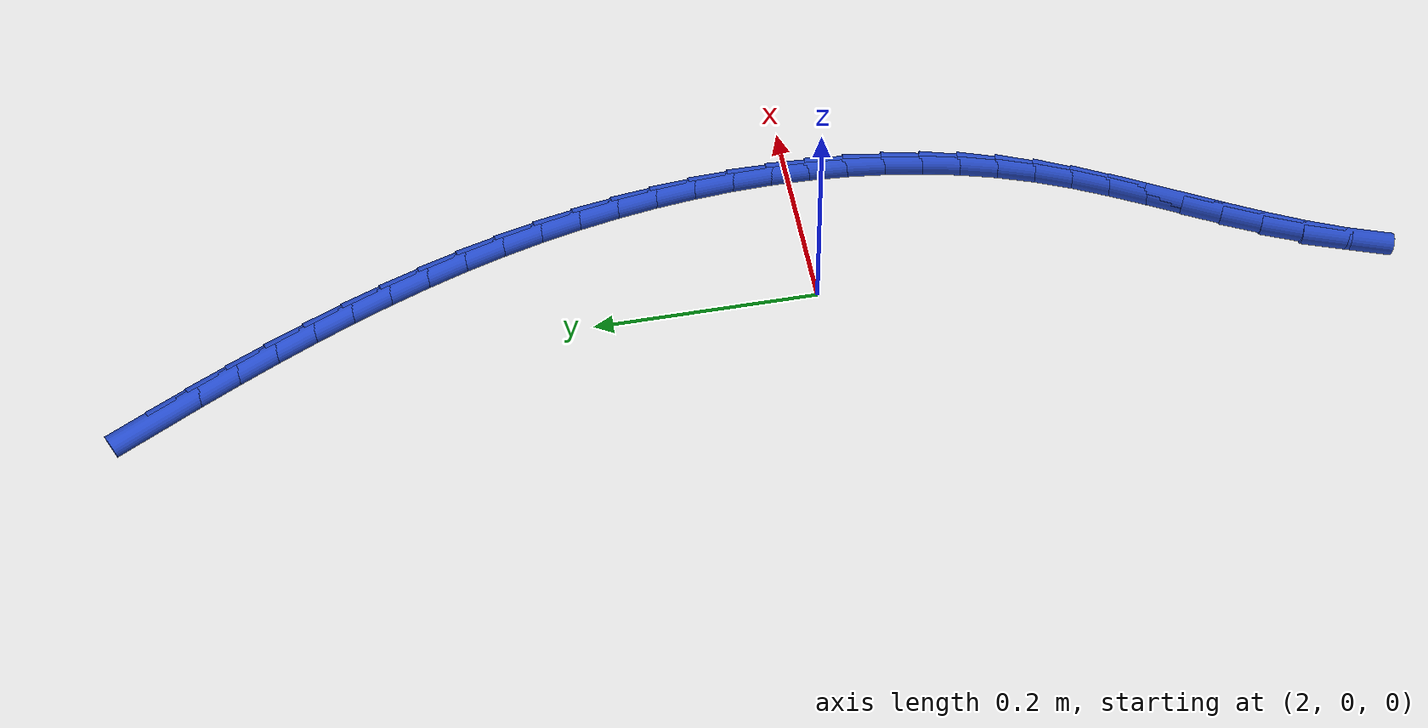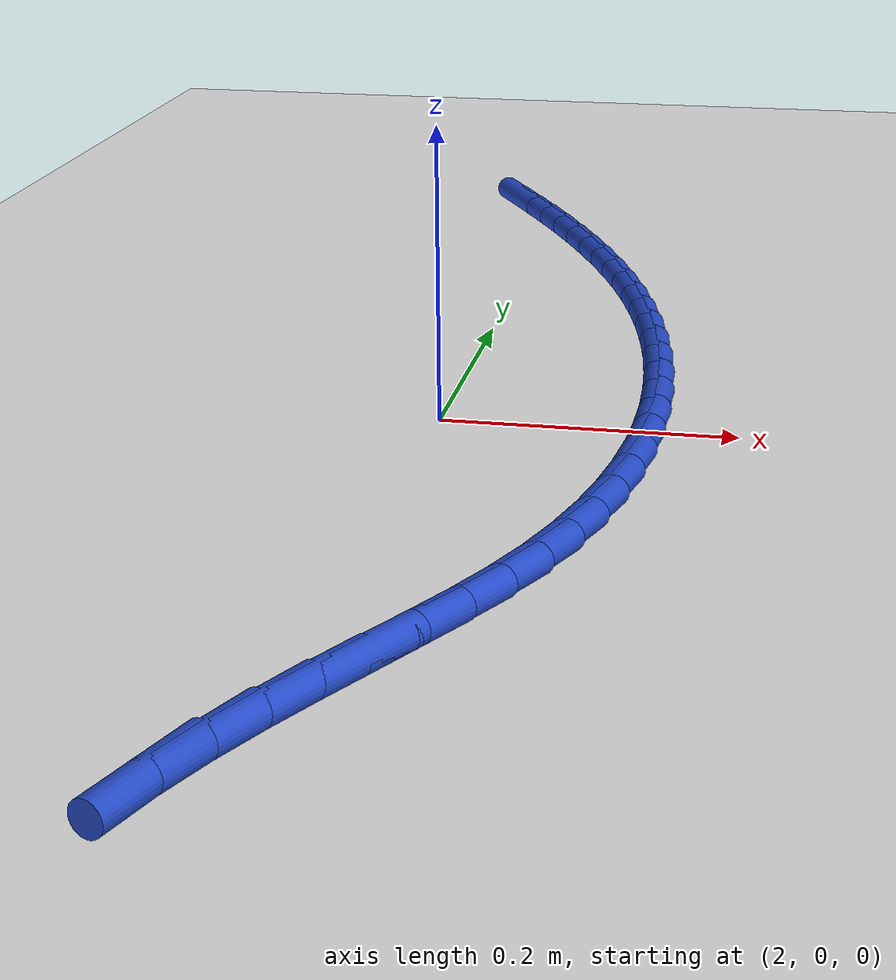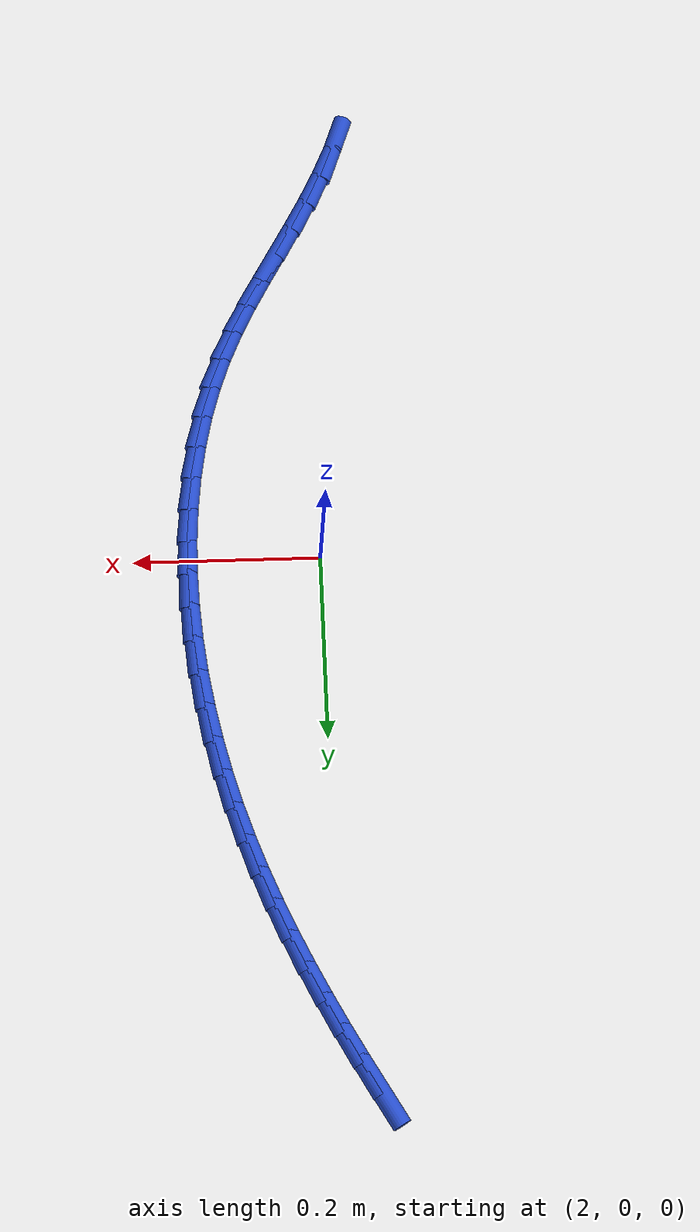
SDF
<sdf version="1.6">
 <world name="default">
  <model name="ground_plane">
   <static>1</static>
   <link name="link">
    <collision name="collision">
     <geometry><plane><normal>0 0 1</normal><size>100 100</size></plane></geometry>
     <surface><friction><ode><mu>100</mu><mu2>50</mu2></ode></friction></surface>
    </collision>
    <visual name="visual">
     <cast_shadows>0</cast_shadows>
     <geometry><plane><normal>0 0 1</normal><size>100 100</size></plane></geometry>
     <material>
      <script><uri>file://media/materials/scripts/gazebo.material</uri><name>Gazebo/WhiteGlow</name></script>
     </material>
    </visual>
   </link>
  </model>
  <model name="line">
   <link name="link_79">
    <pose>1.962989195480705 0.5665886991551644 0.01 0 1.57 -1.0466310420004505</pose>
    <collision name="collision">
     <geometry><cylinder><radius>0.01</radius><length>0.08</length></cylinder></geometry>
    </collision>
    <visual name="visual">
     <material>
      <script><name>Gazebo/Blue</name><uri>file://media/materials/scripts/gazebo.material</uri></script>
     </material>
     <geometry><cylinder><radius>0.01</radius><length>0.08</length></cylinder></geometry>
    </visual>
   </link>
   <link name="link_80">
    <pose>1.9808729263379492 0.5356536541525658 0.01 0 1.57 -1.0619980623714014</pose>
    <collision name="collision">
     <geometry><cylinder><radius>0.01</radius><length>0.08</length></cylinder></geometry>
    </collision>
    <visual name="visual">
     <material>
      <script><name>Gazebo/Blue</name><uri>file://media/materials/scripts/gazebo.material</uri></script>
     </material>
     <geometry><cylinder><radius>0.01</radius><length>0.08</length></cylinder></geometry>
    </visual>
   </link>
   <link name="link_81">
    <pose>1.9983145445873887 0.5043840594429433 0.01 0 1.57 -1.0803072613480527</pose>
    <collision name="collision">
     <geometry><cylinder><radius>0.01</radius><length>0.08</length></cylinder></geometry>
    </collision>
    <visual name="visual">
     <material>
      <script><name>Gazebo/Blue</name><uri>file://media/materials/scripts/gazebo.material</uri></script>
     </material>
     <geometry><cylinder><radius>0.01</radius><length>0.08</length></cylinder></geometry>
    </visual>
   </link>
   <link name="link_82">
    <pose>2.015212914961491 0.47274014984669144 0.01 0 1.57 -1.1015498589501629</pose>
    <collision name="collision">
     <geometry><cylinder><radius>0.01</radius><length>0.08</length></cylinder></geometry>
    </collision>
    <visual name="visual">
     <material>
      <script><name>Gazebo/Blue</name><uri>file://media/materials/scripts/gazebo.material</uri></script>
     </material>
     <geometry><cylinder><radius>0.01</radius><length>0.08</length></cylinder></geometry>
    </visual>
   </link>
   <link name="link_83">
    <pose>2.0314669021927214 0.4406821601842041 0.01 0 1.57 -1.125709327581201</pose>
    <collision name="collision">
     <geometry><cylinder><radius>0.01</radius><length>0.08</length></cylinder></geometry>
    </collision>
    <visual name="visual">
     <material>
      <script><name>Gazebo/Blue</name><uri>file://media/materials/scripts/gazebo.material</uri></script>
     </material>
     <geometry><cylinder><radius>0.01</radius><length>0.08</length></cylinder></geometry>
    </visual>
   </link>
   <link name="link_84">
    <pose>2.0469753710135485 0.40817032527587505 0.01 0 1.57 -1.1527559885985998</pose>
    <collision name="collision">
     <geometry><cylinder><radius>0.01</radius><length>0.08</length></cylinder></geometry>
    </collision>
    <visual name="visual">
     <material>
      <script><name>Gazebo/Blue</name><uri>file://media/materials/scripts/gazebo.material</uri></script>
     </material>
     <geometry><cylinder><radius>0.01</radius><length>0.08</length></cylinder></geometry>
    </visual>
   </link>
   <link name="link_85">
    <pose>2.0616371861564384 0.3751648799420984 0.01 0 1.57 -1.182641100235529</pose>
    <collision name="collision">
     <geometry><cylinder><radius>0.01</radius><length>0.08</length></cylinder></geometry>
    </collision>
    <visual name="visual">
     <material>
      <script><name>Gazebo/Blue</name><uri>file://media/materials/scripts/gazebo.material</uri></script>
     </material>
     <geometry><cylinder><radius>0.01</radius><length>0.08</length></cylinder></geometry>
    </visual>
   </link>
   <link name="link_86">
    <pose>2.0753512123538576 0.34162605900326853 0.01 0 1.57 -1.2152906776699097</pose>
    <collision name="collision">
     <geometry><cylinder><radius>0.01</radius><length>0.08</length></cylinder></geometry>
    </collision>
    <visual name="visual">
     <material>
      <script><name>Gazebo/Blue</name><uri>file://media/materials/scripts/gazebo.material</uri></script>
     </material>
     <geometry><cylinder><radius>0.01</radius><length>0.08</length></cylinder></geometry>
    </visual>
   </link>
   <link name="link_87">
    <pose>2.0880163143382746 0.307514097279779 0.01 0 1.57 -1.2505994121437427</pose>
    <collision name="collision">
     <geometry><cylinder><radius>0.01</radius><length>0.08</length></cylinder></geometry>
    </collision>
    <visual name="visual">
     <material>
      <script><name>Gazebo/Blue</name><uri>file://media/materials/scripts/gazebo.material</uri></script>
     </material>
     <geometry><cylinder><radius>0.01</radius><length>0.08</length></cylinder></geometry>
    </visual>
   </link>
   <link name="link_88">
    <pose>2.099531356842155 0.27278922959202395 0.01 0 1.57 -1.2882680253399197</pose>
    <collision name="collision">
     <geometry><cylinder><radius>0.01</radius><length>0.08</length></cylinder></geometry>
    </collision>
    <visual name="visual">
     <material>
      <script><name>Gazebo/Blue</name><uri>file://media/materials/scripts/gazebo.material</uri></script>
     </material>
     <geometry><cylinder><radius>0.01</radius><length>0.08</length></cylinder></geometry>
    </visual>
   </link>
   <link name="link_89">
    <pose>2.1097978652505014 0.237423291607962 0.01 0 1.57 -1.3269212375857353</pose>
    <collision name="collision">
     <geometry><cylinder><radius>0.01</radius><length>0.08</length></cylinder></geometry>
    </collision>
    <visual name="visual">
     <material>
      <script><name>Gazebo/Blue</name><uri>file://media/materials/scripts/gazebo.material</uri></script>
     </material>
     <geometry><cylinder><radius>0.01</radius><length>0.08</length></cylinder></geometry>
    </visual>
   </link>
   <link name="link_90">
    <pose>2.1187399327188383 0.20148651788913038 0.01 0 1.57 -1.3661304447037097</pose>
    <collision name="collision">
     <geometry><cylinder><radius>0.01</radius><length>0.08</length></cylinder></geometry>
    </collision>
    <visual name="visual">
     <material>
      <script><name>Gazebo/Blue</name><uri>file://media/materials/scripts/gazebo.material</uri></script>
     </material>
     <geometry><cylinder><radius>0.01</radius><length>0.08</length></cylinder></geometry>
    </visual>
   </link>
   <link name="link_91">
    <pose>2.12629302706866 0.16509873826146876 0.01 0 1.57 -1.4061799589978192</pose>
    <collision name="collision">
     <geometry><cylinder><radius>0.01</radius><length>0.08</length></cylinder></geometry>
    </collision>
    <visual name="visual">
     <material>
      <script><name>Gazebo/Blue</name><uri>file://media/materials/scripts/gazebo.material</uri></script>
     </material>
     <geometry><cylinder><radius>0.01</radius><length>0.08</length></cylinder></geometry>
    </visual>
   </link>
   <link name="link_92">
    <pose>2.132392703046546 0.128380161557449 0.01 0 1.57 -1.4473568395732224</pose>
    <collision name="collision">
     <geometry><cylinder><radius>0.01</radius><length>0.08</length></cylinder></geometry>
    </collision>
    <visual name="visual">
     <material>
      <script><name>Gazebo/Blue</name><uri>file://media/materials/scripts/gazebo.material</uri></script>
     </material>
     <geometry><cylinder><radius>0.01</radius><length>0.08</length></cylinder></geometry>
    </visual>
   </link>
   <link name="link_93">
    <pose>2.1369745153990767 0.0914509966095431 0.01 0 1.57 -1.4899480797754947</pose>
    <collision name="collision">
     <geometry><cylinder><radius>0.01</radius><length>0.08</length></cylinder></geometry>
    </collision>
    <visual name="visual">
     <material>
      <script><name>Gazebo/Blue</name><uri>file://media/materials/scripts/gazebo.material</uri></script>
     </material>
     <geometry><cylinder><radius>0.01</radius><length>0.08</length></cylinder></geometry>
    </visual>
   </link>
   <link name="link_94">
    <pose>2.1399740188728313 0.054431452250221765 0.01 0 1.57 -1.5342416586703944</pose>
    <collision name="collision">
     <geometry><cylinder><radius>0.01</radius><length>0.08</length></cylinder></geometry>
    </collision>
    <visual name="visual">
     <material>
      <script><name>Gazebo/Blue</name><uri>file://media/materials/scripts/gazebo.material</uri></script>
     </material>
     <geometry><cylinder><radius>0.01</radius><length>0.08</length></cylinder></geometry>
    </visual>
   </link>
   <link name="link_95">
    <pose>2.1413267682143915 0.01744173731195696 0.01 0 1.57 1.5610666341069936</pose>
    <collision name="collision">
     <geometry><cylinder><radius>0.01</radius><length>0.08</length></cylinder></geometry>
    </collision>
    <visual name="visual">
     <material>
      <script><name>Gazebo/Blue</name><uri>file://media/materials/scripts/gazebo.material</uri></script>
     </material>
     <geometry><cylinder><radius>0.01</radius><length>0.08</length></cylinder></geometry>
    </visual>
   </link>
   <link name="link_96">
    <pose>2.1409683181703354 -0.019397939372779786 0.01 0 1.57 1.5125050973401726</pose>
    <collision name="collision">
     <geometry><cylinder><radius>0.01</radius><length>0.08</length></cylinder></geometry>
    </collision>
    <visual name="visual">
     <material>
      <script><name>Gazebo/Blue</name><uri>file://media/materials/scripts/gazebo.material</uri></script>
     </material>
     <geometry><cylinder><radius>0.01</radius><length>0.08</length></cylinder></geometry>
    </visual>
   </link>
   <link name="link_97">
    <pose>2.1388342234872457 -0.05596736897151691 0.01 0 1.57 1.4613870761054026</pose>
    <collision name="collision">
     <geometry><cylinder><radius>0.01</radius><length>0.08</length></cylinder></geometry>
    </collision>
    <visual name="visual">
     <material>
      <script><name>Gazebo/Blue</name><uri>file://media/materials/scripts/gazebo.material</uri></script>
     </material>
     <geometry><cylinder><radius>0.01</radius><length>0.08</length></cylinder></geometry>
    </visual>
   </link>
   <link name="link_98">
    <pose>2.1348600389117007 -0.09214634265178212 0.01 0 1.57 1.4074485168232047</pose>
    <collision name="collision">
     <geometry><cylinder><radius>0.01</radius><length>0.08</length></cylinder></geometry>
    </collision>
    <visual name="visual">
     <material>
      <script><name>Gazebo/Blue</name><uri>file://media/materials/scripts/gazebo.material</uri></script>
     </material>
     <geometry><cylinder><radius>0.01</radius><length>0.08</length></cylinder></geometry>
    </visual>
   </link>
   <link name="link_99">
    <pose>2.1289813191902813 -0.1278146515811054 0.01 0 1.57 1.3504525297192775</pose>
    <collision name="collision">
     <geometry><cylinder><radius>0.01</radius><length>0.08</length></cylinder></geometry>
    </collision>
    <visual name="visual">
     <material>
      <script><name>Gazebo/Blue</name><uri>file://media/materials/scripts/gazebo.material</uri></script>
     </material>
     <geometry><cylinder><radius>0.01</radius><length>0.08</length></cylinder></geometry>
    </visual>
   </link>
   <link name="link_100">
    <pose>2.1211336190695675 -0.1628520869270144 0.01 0 1.57 1.2902054831924188</pose>
    <collision name="collision">
     <geometry><cylinder><radius>0.01</radius><length>0.08</length></cylinder></geometry>
    </collision>
    <visual name="visual">
     <material>
      <script><name>Gazebo/Blue</name><uri>file://media/materials/scripts/gazebo.material</uri></script>
     </material>
     <geometry><cylinder><radius>0.01</radius><length>0.08</length></cylinder></geometry>
    </visual>
   </link>
   <link name="link_101">
    <pose>2.11125249329614 -0.19713843985703766 0.01 0 1.57 1.2265773175513355</pose>
    <collision name="collision">
     <geometry><cylinder><radius>0.01</radius><length>0.08</length></cylinder></geometry>
    </collision>
    <visual name="visual">
     <material>
      <script><name>Gazebo/Blue</name><uri>file://media/materials/scripts/gazebo.material</uri></script>
     </material>
     <geometry><cylinder><radius>0.01</radius><length>0.08</length></cylinder></geometry>
    </visual>
   </link>
   <link name="link_102">
    <pose>2.0992734966165774 -0.2305535015387034 0.01 0 1.57 1.1606212839108563</pose>
    <collision name="collision">
     <geometry><cylinder><radius>0.01</radius><length>0.08</length></cylinder></geometry>
    </collision>
    <visual name="visual">
     <material>
      <script><name>Gazebo/Blue</name><uri>file://media/materials/scripts/gazebo.material</uri></script>
     </material>
     <geometry><cylinder><radius>0.01</radius><length>0.08</length></cylinder></geometry>
    </visual>
   </link>
   <link name="link_103">
    <pose>2.0851646524734435 -0.2629996102055947 0.01 0 1.57 1.1048480109064847</pose>
    <collision name="collision">
     <geometry><cylinder><radius>0.01</radius><length>0.08</length></cylinder></geometry>
    </collision>
    <visual name="visual">
     <material>
      <script><name>Gazebo/Blue</name><uri>file://media/materials/scripts/gazebo.material</uri></script>
     </material>
     <geometry><cylinder><radius>0.01</radius><length>0.08</length></cylinder></geometry>
    </visual>
   </link>
   <link name="link_104">
    <pose>2.0692575842802743 -0.29463159690983315 0.01 0 1.57 1.0673768696235058</pose>
    <collision name="collision">
     <geometry><cylinder><radius>0.01</radius><length>0.08</length></cylinder></geometry>
    </collision>
    <visual name="visual">
     <material>
      <script><name>Gazebo/Blue</name><uri>file://media/materials/scripts/gazebo.material</uri></script>
     </material>
     <geometry><cylinder><radius>0.01</radius><length>0.08</length></cylinder></geometry>
    </visual>
   </link>
   <link name="link_105">
    <pose>2.052112083372609 -0.32576273815548457 0.01 0 1.57 1.048314945224774</pose>
    <collision name="collision">
     <geometry><cylinder><radius>0.01</radius><length>0.08</length></cylinder></geometry>
    </collision>
    <visual name="visual">
     <material>
      <script><name>Gazebo/Blue</name><uri>file://media/materials/scripts/gazebo.material</uri></script>
     </material>
     <geometry><cylinder><radius>0.01</radius><length>0.08</length></cylinder></geometry>
    </visual>
   </link>
   <link name="link_106">
    <pose>2.0342914658870073 -0.35670875815567676 0.01 0 1.57 1.047431167658874</pose>
    <collision name="collision">
     <geometry><cylinder><radius>0.01</radius><length>0.08</length></cylinder></geometry>
    </collision>
    <visual name="visual">
     <material>
      <script><name>Gazebo/Blue</name><uri>file://media/materials/scripts/gazebo.material</uri></script>
     </material>
     <geometry><cylinder><radius>0.01</radius><length>0.08</length></cylinder></geometry>
    </visual>
   </link>
   <link name="link_107">
    <pose>2.0163590479600253 -0.3877853811235354 0.01 0 1.57 1.064470180407987</pose>
    <collision name="collision">
     <geometry><cylinder><radius>0.01</radius><length>0.08</length></cylinder></geometry>
    </collision>
    <visual name="visual">
     <material>
      <script><name>Gazebo/Blue</name><uri>file://media/materials/scripts/gazebo.material</uri></script>
     </material>
     <geometry><cylinder><radius>0.01</radius><length>0.08</length></cylinder></geometry>
    </visual>
   </link>
   <link name="link_108">
    <pose>1.9988781457282208 -0.41930833127218703 0.01 0 1.57 1.0991630704948767</pose>
    <collision name="collision">
     <geometry><cylinder><radius>0.01</radius><length>0.08</length></cylinder></geometry>
    </collision>
    <visual name="visual">
     <material>
      <script><name>Gazebo/Blue</name><uri>file://media/materials/scripts/gazebo.material</uri></script>
     </material>
     <geometry><cylinder><radius>0.01</radius><length>0.08</length></cylinder></geometry>
    </visual>
   </link>
   <link name="link_109">
    <pose>1.9824120753281507 -0.4515933328147578 0.01 0 1.57 1.1510706969547402</pose>
    <collision name="collision">
     <geometry><cylinder><radius>0.01</radius><length>0.08</length></cylinder></geometry>
    </collision>
    <visual name="visual">
     <material>
      <script><name>Gazebo/Blue</name><uri>file://media/materials/scripts/gazebo.material</uri></script>
     </material>
     <geometry><cylinder><radius>0.01</radius><length>0.08</length></cylinder></geometry>
    </visual>
   </link>
   <link name="link_110">
    <pose>1.967524152896373 -0.48495610996437427 0.01 0 1.57 1.2189600784452528</pose>
    <collision name="collision">
     <geometry><cylinder><radius>0.01</radius><length>0.08</length></cylinder></geometry>
    </collision>
    <visual name="visual">
     <material>
      <script><name>Gazebo/Blue</name><uri>file://media/materials/scripts/gazebo.material</uri></script>
     </material>
     <geometry><cylinder><radius>0.01</radius><length>0.08</length></cylinder></geometry>
    </visual>
   </link>
  </model>
 </world>
</sdf>
